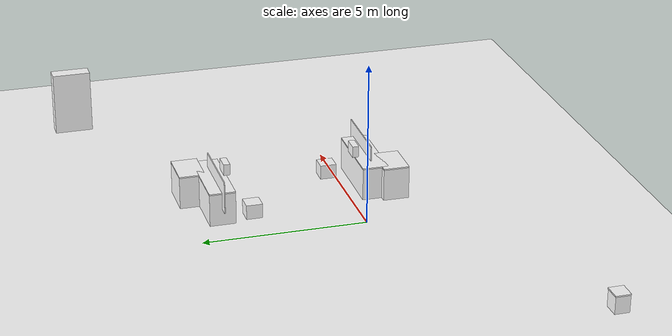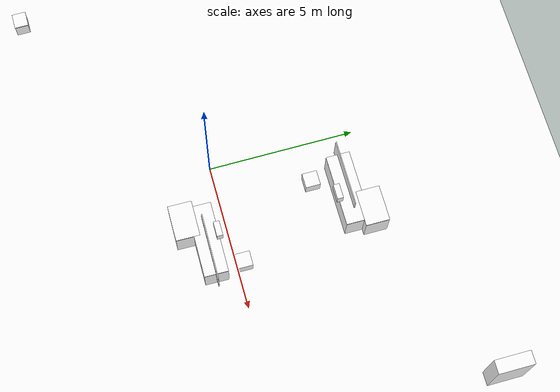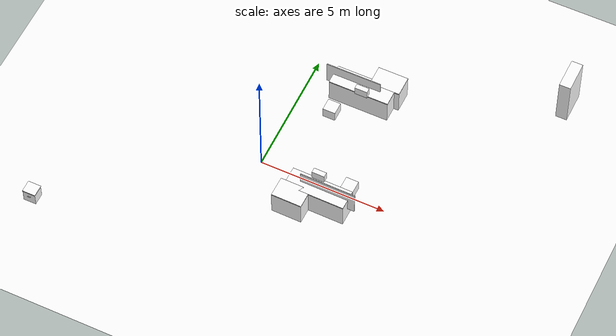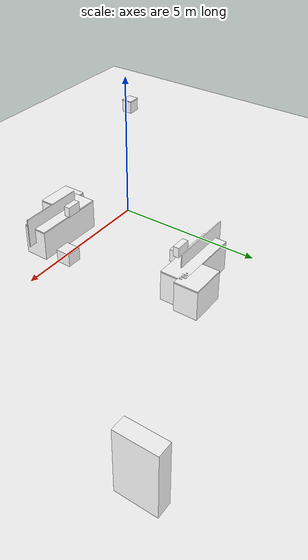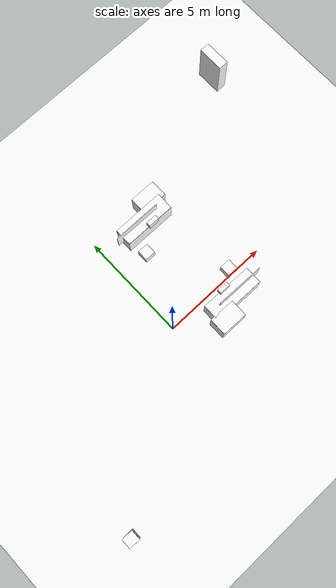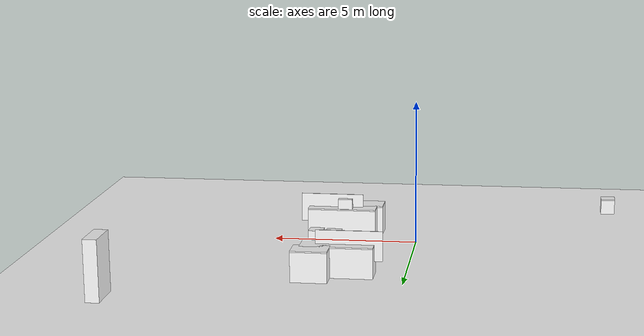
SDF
<sdf version="1.9">
 <world name="hospital">
  <model name="ground_plane">
   <static>true</static>
   <link name="link">
    <collision name="collision">
     <geometry><plane><normal>0 0 1</normal><size>100 100</size></plane></geometry>
     <surface><friction><ode><mu>100</mu><mu2>50</mu2></ode></friction></surface>
    </collision>
    <visual name="visual">
     <cast_shadows>false</cast_shadows>
     <geometry><plane><normal>0 0 1</normal><size>100 100</size></plane></geometry>
     <material><ambient>1 1 1 1</ambient><diffuse>1 1 1 1</diffuse></material>
    </visual>
    <inertial>
     <mass>1</mass>
     <inertia><ixx>1</ixx><ixy>0</ixy><ixz>0</ixz><iyy>1</iyy><iyz>0</iyz><izz>1</izz></inertia>
    </inertial>
   </link>
  </model>
  <model name="nightstand_5">
   <static>true</static>
   <link name="body">
    <pose>-7 -6 0.275 0 -0 0</pose>
    <visual name="body_v">
     <geometry><box><size>0.5 0.45 0.55</size></box></geometry>
     <material><ambient>1 1 1 1</ambient><diffuse>1 1 1 1</diffuse><specular>0.15 0.15 0.18 1</specular></material>
    </visual>
    <collision name="body_c"><geometry><box><size>0.5 0.45 0.55</size></box></geometry></collision>
    <inertial>
     <mass>1</mass>
     <inertia><ixx>1</ixx><ixy>0</ixy><ixz>0</ixz><iyy>1</iyy><iyz>0</iyz><izz>1</izz></inertia>
    </inertial>
   </link>
   <link name="top">
    <pose>-7 -6 0.55 0 -0 0</pose>
    <visual name="top_v">
     <geometry><box><size>0.52 0.47 0.04</size></box></geometry>
     <material><ambient>1 1 1 1</ambient><diffuse>1 1 1 1</diffuse><specular>0.15 0.15 0.18 1</specular></material>
    </visual>
    <collision name="top_c"><geometry><box><size>0.52 0.47 0.04</size></box></geometry></collision>
    <inertial>
     <mass>1</mass>
     <inertia><ixx>1</ixx><ixy>0</ixy><ixz>0</ixz><iyy>1</iyy><iyz>0</iyz><izz>1</izz></inertia>
    </inertial>
   </link>
   <link name="drawer">
    <pose>-7 -6.2 0.34 0 -0 0</pose>
    <visual name="drawer_v">
     <geometry><box><size>0.46 0.04 0.14</size></box></geometry>
     <material><ambient>1 1 1 1</ambient><diffuse>1 1 1 1</diffuse><specular>0.15 0.15 0.18 1</specular></material>
    </visual>
    <collision name="drawer_c"><geometry><box><size>0.46 0.04 0.14</size></box></geometry></collision>
    <inertial>
     <mass>1</mass>
     <inertia><ixx>1</ixx><ixy>0</ixy><ixz>0</ixz><iyy>1</iyy><iyz>0</iyz><izz>1</izz></inertia>
    </inertial>
   </link>
   <link name="handle">
    <pose>-7 -6.235 0.34 0 -0 0</pose>
    <visual name="handle_v">
     <geometry><box><size>0.12 0.03 0.02</size></box></geometry>
     <material><ambient>1 1 1 1</ambient><diffuse>1 1 1 1</diffuse><specular>0.15 0.15 0.18 1</specular></material>
    </visual>
    <collision name="handle_c"><geometry><box><size>0.12 0.03 0.02</size></box></geometry></collision>
    <inertial>
     <mass>1</mass>
     <inertia><ixx>1</ixx><ixy>0</ixy><ixz>0</ixz><iyy>1</iyy><iyz>0</iyz><izz>1</izz></inertia>
    </inertial>
   </link>
   <pose>0.101654 1.01148 0 0 -0 0</pose>
  </model>
  <model name="shelf_4">
   <static>true</static>
   <link name="frame">
    <pose>8.5 4 1 0 -0 1.57</pose>
    <visual name="frame_v">
     <geometry><box><size>1.2 0.45 2</size></box></geometry>
     <material><ambient>1 1 1 1</ambient><diffuse>1 1 1 1</diffuse><specular>0.15 0.15 0.18 1</specular></material>
    </visual>
    <collision name="frame_c"><geometry><box><size>1.2 0.45 2</size></box></geometry></collision>
    <inertial>
     <mass>1</mass>
     <inertia><ixx>1</ixx><ixy>0</ixy><ixz>0</ixz><iyy>1</iyy><iyz>0</iyz><izz>1</izz></inertia>
    </inertial>
   </link>
   <link name="shelf0">
    <pose>8.5 4 0.25 0 -0 1.57</pose>
    <visual name="shelf0_v">
     <geometry><box><size>1.15 0.42 0.04</size></box></geometry>
     <material><ambient>1 1 1 1</ambient><diffuse>1 1 1 1</diffuse><specular>0.15 0.15 0.18 1</specular></material>
    </visual>
    <collision name="shelf0_c"><geometry><box><size>1.15 0.42 0.04</size></box></geometry></collision>
    <inertial>
     <mass>1</mass>
     <inertia><ixx>1</ixx><ixy>0</ixy><ixz>0</ixz><iyy>1</iyy><iyz>0</iyz><izz>1</izz></inertia>
    </inertial>
   </link>
   <link name="shelf1">
    <pose>8.5 4 0.75 0 -0 1.57</pose>
    <visual name="shelf1_v">
     <geometry><box><size>1.15 0.42 0.04</size></box></geometry>
     <material><ambient>1 1 1 1</ambient><diffuse>1 1 1 1</diffuse><specular>0.15 0.15 0.18 1</specular></material>
    </visual>
    <collision name="shelf1_c"><geometry><box><size>1.15 0.42 0.04</size></box></geometry></collision>
    <inertial>
     <mass>1</mass>
     <inertia><ixx>1</ixx><ixy>0</ixy><ixz>0</ixz><iyy>1</iyy><iyz>0</iyz><izz>1</izz></inertia>
    </inertial>
   </link>
   <link name="shelf2">
    <pose>8.5 4 1.25 0 -0 1.57</pose>
    <visual name="shelf2_v">
     <geometry><box><size>1.15 0.42 0.04</size></box></geometry>
     <material><ambient>1 1 1 1</ambient><diffuse>1 1 1 1</diffuse><specular>0.15 0.15 0.18 1</specular></material>
    </visual>
    <collision name="shelf2_c"><geometry><box><size>1.15 0.42 0.04</size></box></geometry></collision>
    <inertial>
     <mass>1</mass>
     <inertia><ixx>1</ixx><ixy>0</ixy><ixz>0</ixz><iyy>1</iyy><iyz>0</iyz><izz>1</izz></inertia>
    </inertial>
   </link>
   <link name="shelf3">
    <pose>8.5 4 1.75 0 -0 1.57</pose>
    <visual name="shelf3_v">
     <geometry><box><size>1.15 0.42 0.04</size></box></geometry>
     <material><ambient>1 1 1 1</ambient><diffuse>1 1 1 1</diffuse><specular>0.15 0.15 0.18 1</specular></material>
    </visual>
    <collision name="shelf3_c"><geometry><box><size>1.15 0.42 0.04</size></box></geometry></collision>
    <inertial>
     <mass>1</mass>
     <inertia><ixx>1</ixx><ixy>0</ixy><ixz>0</ixz><iyy>1</iyy><iyz>0</iyz><izz>1</izz></inertia>
    </inertial>
   </link>
   <pose>0.744169 3.2535 0 0 -0 0</pose>
  </model>
  <model name="reception_desk">
   <static>true</static>
   <link name="counter_main">
    <pose>1 -0.7 0.5 0 0 -1.57</pose>
    <visual name="counter_main_v">
     <geometry><box><size>2.4 0.8 1</size></box></geometry>
     <material><ambient>1 1 1 1</ambient><diffuse>1 1 1 1</diffuse><specular>0.15 0.15 0.18 1</specular></material>
    </visual>
    <collision name="counter_main_c"><geometry><box><size>2.4 0.8 1</size></box></geometry></collision>
    <inertial>
     <mass>1</mass>
     <inertia><ixx>1</ixx><ixy>0</ixy><ixz>0</ixz><iyy>1</iyy><iyz>0</iyz><izz>1</izz></inertia>
    </inertial>
   </link>
   <link name="counter_return">
    <pose>1.6 -1.5 0.5 0 0 -1.57</pose>
    <visual name="counter_return_v">
     <geometry><box><size>1.2 0.8 1</size></box></geometry>
     <material><ambient>1 1 1 1</ambient><diffuse>1 1 1 1</diffuse><specular>0.15 0.15 0.18 1</specular></material>
    </visual>
    <collision name="counter_return_c"><geometry><box><size>1.2 0.8 1</size></box></geometry></collision>
    <inertial>
     <mass>1</mass>
     <inertia><ixx>1</ixx><ixy>0</ixy><ixz>0</ixz><iyy>1</iyy><iyz>0</iyz><izz>1</izz></inertia>
    </inertial>
   </link>
   <link name="worktop">
    <pose>1 -0.7 1.02 0 0 -1.57</pose>
    <visual name="worktop_v">
     <geometry><box><size>2.4 0.8 0.04</size></box></geometry>
     <material><ambient>1 1 1 1</ambient><diffuse>1 1 1 1</diffuse><specular>0.15 0.15 0.18 1</specular></material>
    </visual>
    <collision name="worktop_c"><geometry><box><size>2.4 0.8 0.04</size></box></geometry></collision>
    <inertial>
     <mass>1</mass>
     <inertia><ixx>1</ixx><ixy>0</ixy><ixz>0</ixz><iyy>1</iyy><iyz>0</iyz><izz>1</izz></inertia>
    </inertial>
   </link>
   <link name="worktop2">
    <pose>1.6 -1.5 1.02 0 0 -1.57</pose>
    <visual name="worktop2_v">
     <geometry><box><size>1.2 0.8 0.04</size></box></geometry>
     <material><ambient>1 1 1 1</ambient><diffuse>1 1 1 1</diffuse><specular>0.15 0.15 0.18 1</specular></material>
    </visual>
    <collision name="worktop2_c"><geometry><box><size>1.2 0.8 0.04</size></box></geometry></collision>
    <inertial>
     <mass>1</mass>
     <inertia><ixx>1</ixx><ixy>0</ixy><ixz>0</ixz><iyy>1</iyy><iyz>0</iyz><izz>1</izz></inertia>
    </inertial>
   </link>
   <link name="monitor">
    <pose>0.6 -0.85 1.25 0 0 -1.57</pose>
    <visual name="monitor_v">
     <geometry><box><size>0.5 0.2 0.35</size></box></geometry>
     <material><ambient>1 1 1 1</ambient><diffuse>1 1 1 1</diffuse><specular>0.15 0.15 0.18 1</specular></material>
    </visual>
    <collision name="monitor_c"><geometry><box><size>0.5 0.2 0.35</size></box></geometry></collision>
    <inertial>
     <mass>1</mass>
     <inertia><ixx>1</ixx><ixy>0</ixy><ixz>0</ixz><iyy>1</iyy><iyz>0</iyz><izz>1</izz></inertia>
    </inertial>
   </link>
   <link name="chair">
    <pose>0 0.1 0.225 0 0 -1.57</pose>
    <visual name="chair_v">
     <geometry><box><size>0.5 0.5 0.45</size></box></geometry>
     <material><ambient>1 1 1 1</ambient><diffuse>1 1 1 1</diffuse><specular>0.15 0.15 0.18 1</specular></material>
    </visual>
    <collision name="chair_c"><geometry><box><size>0.5 0.5 0.45</size></box></geometry></collision>
    <inertial>
     <mass>1</mass>
     <inertia><ixx>1</ixx><ixy>0</ixy><ixz>0</ixz><iyy>1</iyy><iyz>0</iyz><izz>1</izz></inertia>
    </inertial>
   </link>
   <link name="glass">
    <pose>1 -0.32 1 0 0 -1.57</pose>
    <visual name="glass_v">
     <geometry><box><size>2.2 0.03 1</size></box></geometry>
     <material><ambient>1 1 1 1</ambient><diffuse>1 1 1 1</diffuse><specular>0.15 0.15 0.18 1</specular></material>
    </visual>
    <collision name="glass_c"><geometry><box><size>2.2 0.03 1</size></box></geometry></collision>
    <inertial>
     <mass>1</mass>
     <inertia><ixx>1</ixx><ixy>0</ixy><ixz>0</ixz><iyy>1</iyy><iyz>0</iyz><izz>1</izz></inertia>
    </inertial>
   </link>
   <pose>3.39186 0.246091 0 0 0 -1.58483</pose>
  </model>
  <model name="reception_desk_1">
   <static>true</static>
   <link name="counter_main">
    <pose>1 -0.7 0.5 0 0 -1.57</pose>
    <visual name="counter_main_v">
     <geometry><box><size>2.4 0.8 1</size></box></geometry>
     <material><ambient>1 1 1 1</ambient><diffuse>1 1 1 1</diffuse><specular>0.15 0.15 0.18 1</specular></material>
    </visual>
    <collision name="counter_main_c"><geometry><box><size>2.4 0.8 1</size></box></geometry></collision>
    <inertial>
     <mass>1</mass>
     <inertia><ixx>1</ixx><ixy>0</ixy><ixz>0</ixz><iyy>1</iyy><iyz>0</iyz><izz>1</izz></inertia>
    </inertial>
   </link>
   <link name="counter_return">
    <pose>1.6 -1.5 0.5 0 0 -1.57</pose>
    <visual name="counter_return_v">
     <geometry><box><size>1.2 0.8 1</size></box></geometry>
     <material><ambient>1 1 1 1</ambient><diffuse>1 1 1 1</diffuse><specular>0.15 0.15 0.18 1</specular></material>
    </visual>
    <collision name="counter_return_c"><geometry><box><size>1.2 0.8 1</size></box></geometry></collision>
    <inertial>
     <mass>1</mass>
     <inertia><ixx>1</ixx><ixy>0</ixy><ixz>0</ixz><iyy>1</iyy><iyz>0</iyz><izz>1</izz></inertia>
    </inertial>
   </link>
   <link name="worktop">
    <pose>1 -0.7 1.02 0 0 -1.57</pose>
    <visual name="worktop_v">
     <geometry><box><size>2.4 0.8 0.04</size></box></geometry>
     <material><ambient>1 1 1 1</ambient><diffuse>1 1 1 1</diffuse><specular>0.15 0.15 0.18 1</specular></material>
    </visual>
    <collision name="worktop_c"><geometry><box><size>2.4 0.8 0.04</size></box></geometry></collision>
    <inertial>
     <mass>1</mass>
     <inertia><ixx>1</ixx><ixy>0</ixy><ixz>0</ixz><iyy>1</iyy><iyz>0</iyz><izz>1</izz></inertia>
    </inertial>
   </link>
   <link name="worktop2">
    <pose>1.6 -1.5 1.02 0 0 -1.57</pose>
    <visual name="worktop2_v">
     <geometry><box><size>1.2 0.8 0.04</size></box></geometry>
     <material><ambient>1 1 1 1</ambient><diffuse>1 1 1 1</diffuse><specular>0.15 0.15 0.18 1</specular></material>
    </visual>
    <collision name="worktop2_c"><geometry><box><size>1.2 0.8 0.04</size></box></geometry></collision>
    <inertial>
     <mass>1</mass>
     <inertia><ixx>1</ixx><ixy>0</ixy><ixz>0</ixz><iyy>1</iyy><iyz>0</iyz><izz>1</izz></inertia>
    </inertial>
   </link>
   <link name="monitor">
    <pose>0.6 -0.85 1.25 0 0 -1.57</pose>
    <visual name="monitor_v">
     <geometry><box><size>0.5 0.2 0.35</size></box></geometry>
     <material><ambient>1 1 1 1</ambient><diffuse>1 1 1 1</diffuse><specular>0.15 0.15 0.18 1</specular></material>
    </visual>
    <collision name="monitor_c"><geometry><box><size>0.5 0.2 0.35</size></box></geometry></collision>
    <inertial>
     <mass>1</mass>
     <inertia><ixx>1</ixx><ixy>0</ixy><ixz>0</ixz><iyy>1</iyy><iyz>0</iyz><izz>1</izz></inertia>
    </inertial>
   </link>
   <link name="chair">
    <pose>0 0.1 0.225 0 0 -1.57</pose>
    <visual name="chair_v">
     <geometry><box><size>0.5 0.5 0.45</size></box></geometry>
     <material><ambient>1 1 1 1</ambient><diffuse>1 1 1 1</diffuse><specular>0.15 0.15 0.18 1</specular></material>
    </visual>
    <collision name="chair_c"><geometry><box><size>0.5 0.5 0.45</size></box></geometry></collision>
    <inertial>
     <mass>1</mass>
     <inertia><ixx>1</ixx><ixy>0</ixy><ixz>0</ixz><iyy>1</iyy><iyz>0</iyz><izz>1</izz></inertia>
    </inertial>
   </link>
   <link name="glass">
    <pose>1 -0.32 1 0 0 -1.57</pose>
    <visual name="glass_v">
     <geometry><box><size>2.2 0.03 1</size></box></geometry>
     <material><ambient>1 1 1 1</ambient><diffuse>1 1 1 1</diffuse><specular>0.15 0.15 0.18 1</specular></material>
    </visual>
    <collision name="glass_c"><geometry><box><size>2.2 0.03 1</size></box></geometry></collision>
    <inertial>
     <mass>1</mass>
     <inertia><ixx>1</ixx><ixy>0</ixy><ixz>0</ixz><iyy>1</iyy><iyz>0</iyz><izz>1</izz></inertia>
    </inertial>
   </link>
   <pose>1.50356 3.14561 0 0 -0 1.56786</pose>
  </model>
 </world>
</sdf>
